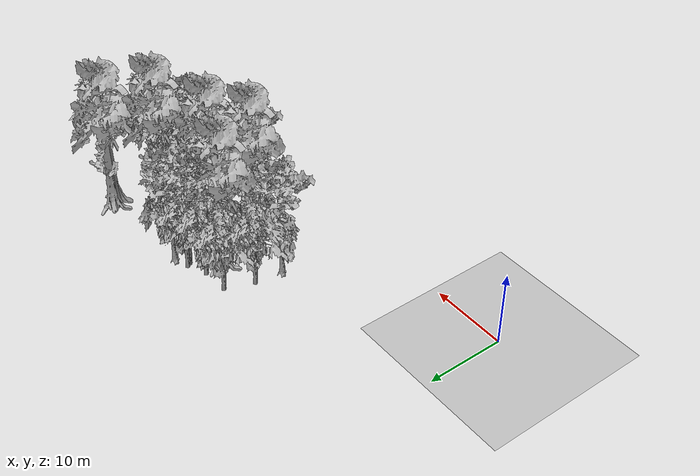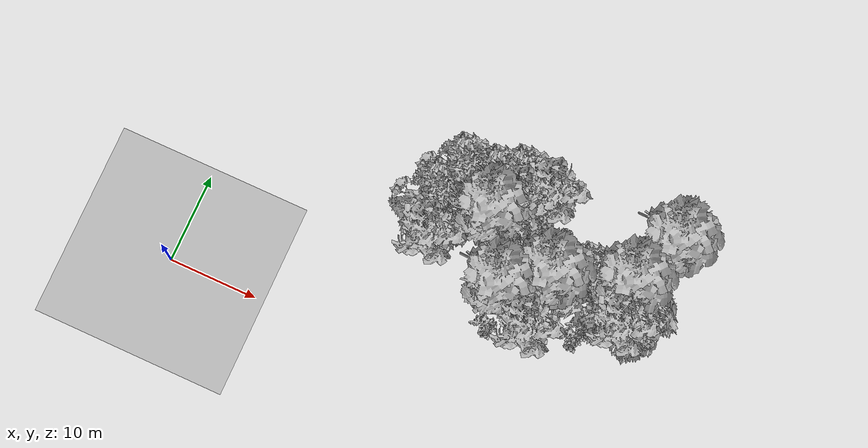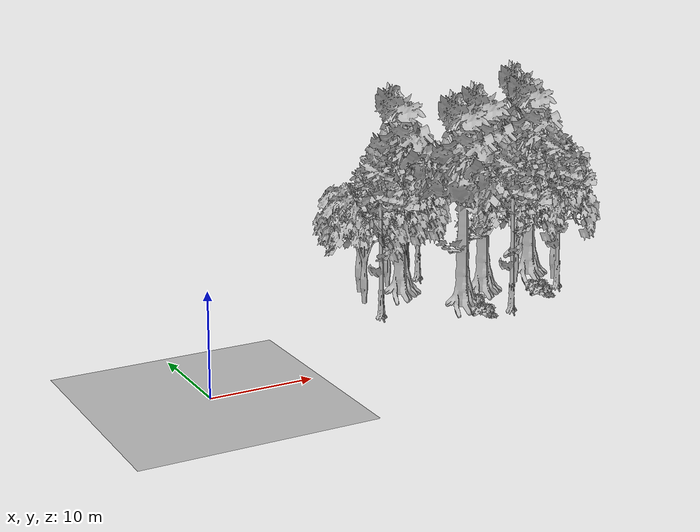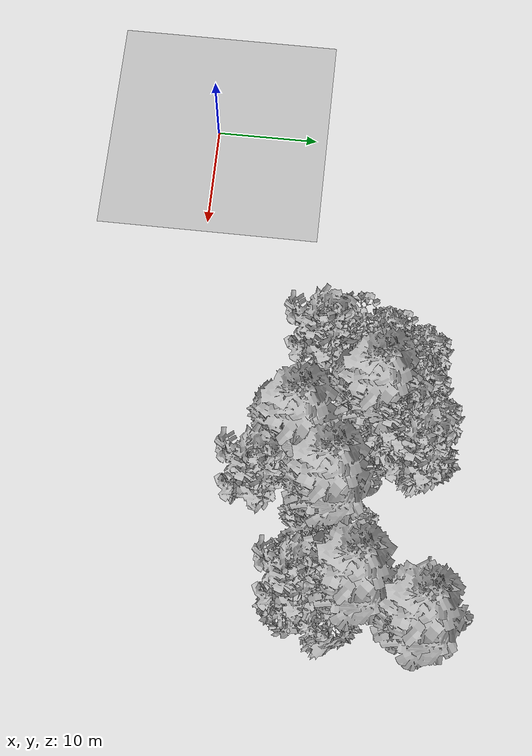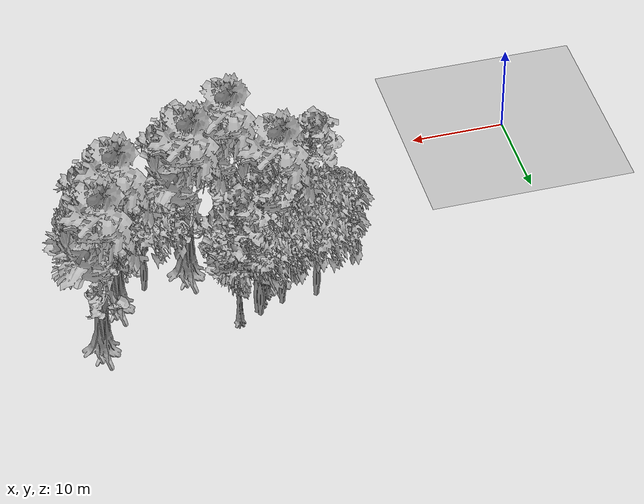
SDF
<sdf version="1.7">
 <world name="default">
  <model name="ground_plane">
   <static>1</static>
   <link name="link">
    <collision name="collision">
     <geometry><plane><normal>0 0 1</normal><size>100 100</size></plane></geometry>
     <surface><contact><ode><min_depth>0.01</min_depth><max_vel>0</max_vel></ode></contact></surface>
    </collision>
    <visual name="grass">
     <cast_shadows>0</cast_shadows>
     <geometry>
      <mesh>
       <scale>0.41000000000000003 0.41000000000000003 0.1</scale>
       <uri>file://grass_plane/meshes/grass_plane.dae</uri>
      </mesh>
     </geometry>
    </visual>
   </link>
  </model>
  <model name="Tree 22">
   <static>1</static>
   <pose>37.80199516911915 14.07022457545068 0 1.57079 -0 0</pose>
   <link name="link">
    <collision name="collision">
     <geometry><mesh><scale>5 5 5</scale><uri>model://tree_4/meshes/tree_4.obj</uri></mesh></geometry>
    </collision>
    <visual name="visual">
     <geometry><mesh><scale>5 5 5</scale><uri>model://tree_4/meshes/tree_4.obj</uri></mesh></geometry>
    </visual>
   </link>
  </model>
  <model name="Tree 40">
   <static>1</static>
   <pose>48.24264820988421 22.439823867339825 0 1.57079 -0 0</pose>
   <link name="link">
    <collision name="collision">
     <geometry><mesh><scale>5 5 5</scale><uri>model://tree_4/meshes/tree_4.obj</uri></mesh></geometry>
    </collision>
    <visual name="visual">
     <geometry><mesh><scale>5 5 5</scale><uri>model://tree_4/meshes/tree_4.obj</uri></mesh></geometry>
    </visual>
   </link>
  </model>
  <model name="Tree 55">
   <static>1</static>
   <pose>25.86277076914162 19.972662460139063 0 1.57079 -0 0</pose>
   <link name="link">
    <collision name="collision">
     <geometry><mesh><scale>5 5 5</scale><uri>model://tree_2/meshes/tree_2.obj</uri></mesh></geometry>
    </collision>
    <visual name="visual">
     <geometry><mesh><scale>5 5 5</scale><uri>model://tree_2/meshes/tree_2.obj</uri></mesh></geometry>
    </visual>
   </link>
  </model>
  <model name="Tree 77">
   <static>1</static>
   <pose>46.83927495964204 13.837637274720748 0 1.57079 -0 0</pose>
   <link name="link">
    <collision name="collision">
     <geometry><mesh><scale>5 5 5</scale><uri>model://tree_2/meshes/tree_2.obj</uri></mesh></geometry>
    </collision>
    <visual name="visual">
     <geometry><mesh><scale>5 5 5</scale><uri>model://tree_2/meshes/tree_2.obj</uri></mesh></geometry>
    </visual>
   </link>
  </model>
  <model name="Tree 103">
   <static>1</static>
   <pose>45.64608996764218 16.801472499012675 0 1.57079 -0 0</pose>
   <link name="link">
    <collision name="collision">
     <geometry><mesh><scale>5 5 5</scale><uri>model://tree_4/meshes/tree_4.obj</uri></mesh></geometry>
    </collision>
    <visual name="visual">
     <geometry><mesh><scale>5 5 5</scale><uri>model://tree_4/meshes/tree_4.obj</uri></mesh></geometry>
    </visual>
   </link>
  </model>
  <model name="Tree 174">
   <static>1</static>
   <pose>32.18628222674734 20.827485246062864 0 1.57079 -0 0</pose>
   <link name="link">
    <collision name="collision">
     <geometry><mesh><scale>5 5 5</scale><uri>model://tree_2/meshes/tree_2.obj</uri></mesh></geometry>
    </collision>
    <visual name="visual">
     <geometry><mesh><scale>5 5 5</scale><uri>model://tree_2/meshes/tree_2.obj</uri></mesh></geometry>
    </visual>
   </link>
  </model>
  <model name="Tree 209">
   <static>1</static>
   <pose>24.507348798104132 16.383957360278742 0 1.57079 -0 0</pose>
   <link name="link">
    <collision name="collision">
     <geometry><mesh><scale>5 5 5</scale><uri>model://tree_2/meshes/tree_2.obj</uri></mesh></geometry>
    </collision>
    <visual name="visual">
     <geometry><mesh><scale>5 5 5</scale><uri>model://tree_2/meshes/tree_2.obj</uri></mesh></geometry>
    </visual>
   </link>
  </model>
  <model name="Tree 229">
   <static>1</static>
   <pose>46.20866240571068 12.094915122496651 0 1.57079 -0 0</pose>
   <link name="link">
    <collision name="collision">
     <geometry><mesh><scale>5 5 5</scale><uri>model://tree_9/meshes/tree_9.obj</uri></mesh></geometry>
    </collision>
    <visual name="visual">
     <geometry><mesh><scale>5 5 5</scale><uri>model://tree_9/meshes/tree_9.obj</uri></mesh></geometry>
    </visual>
   </link>
  </model>
  <model name="Tree 239">
   <static>1</static>
   <pose>31.596997427976632 19.696301798779032 0 1.57079 -0 0</pose>
   <link name="link">
    <collision name="collision">
     <geometry><mesh><scale>5 5 5</scale><uri>model://tree_9/meshes/tree_9.obj</uri></mesh></geometry>
    </collision>
    <visual name="visual">
     <geometry><mesh><scale>5 5 5</scale><uri>model://tree_9/meshes/tree_9.obj</uri></mesh></geometry>
    </visual>
   </link>
  </model>
  <model name="Tree 258">
   <static>1</static>
   <pose>34.33078379838304 21.757873083839144 0 1.57079 -0 0</pose>
   <link name="link">
    <collision name="collision">
     <geometry><mesh><scale>5 5 5</scale><uri>model://tree_9/meshes/tree_9.obj</uri></mesh></geometry>
    </collision>
    <visual name="visual">
     <geometry><mesh><scale>5 5 5</scale><uri>model://tree_9/meshes/tree_9.obj</uri></mesh></geometry>
    </visual>
   </link>
  </model>
  <model name="Tree 298">
   <static>1</static>
   <pose>42.407879348922094 14.733070181241686 0 1.57079 -0 0</pose>
   <link name="link">
    <collision name="collision">
     <geometry><mesh><scale>5 5 5</scale><uri>model://tree_2/meshes/tree_2.obj</uri></mesh></geometry>
    </collision>
    <visual name="visual">
     <geometry><mesh><scale>5 5 5</scale><uri>model://tree_2/meshes/tree_2.obj</uri></mesh></geometry>
    </visual>
   </link>
  </model>
  <model name="Tree 345">
   <static>1</static>
   <pose>29.686381372685645 17.54589759115069 0 1.57079 -0 0</pose>
   <link name="link">
    <collision name="collision">
     <geometry><mesh><scale>5 5 5</scale><uri>model://tree_4/meshes/tree_4.obj</uri></mesh></geometry>
    </collision>
    <visual name="visual">
     <geometry><mesh><scale>5 5 5</scale><uri>model://tree_4/meshes/tree_4.obj</uri></mesh></geometry>
    </visual>
   </link>
  </model>
  <model name="Tree 389">
   <static>1</static>
   <pose>31.9354265391827 21.279044847657843 0 1.57079 -0 0</pose>
   <link name="link">
    <collision name="collision">
     <geometry><mesh><scale>5 5 5</scale><uri>model://tree_2/meshes/tree_2.obj</uri></mesh></geometry>
    </collision>
    <visual name="visual">
     <geometry><mesh><scale>5 5 5</scale><uri>model://tree_2/meshes/tree_2.obj</uri></mesh></geometry>
    </visual>
   </link>
  </model>
  <model name="Tree 415">
   <static>1</static>
   <pose>33.29643048318633 10.998768436752272 0 1.57079 -0 0</pose>
   <link name="link">
    <collision name="collision">
     <geometry><mesh><scale>5 5 5</scale><uri>model://tree_4/meshes/tree_4.obj</uri></mesh></geometry>
    </collision>
    <visual name="visual">
     <geometry><mesh><scale>5 5 5</scale><uri>model://tree_4/meshes/tree_4.obj</uri></mesh></geometry>
    </visual>
   </link>
  </model>
  <model name="Tree 437">
   <static>1</static>
   <pose>30.92968901215457 18.737203934543373 0 1.57079 -0 0</pose>
   <link name="link">
    <collision name="collision">
     <geometry><mesh><scale>5 5 5</scale><uri>model://tree_9/meshes/tree_9.obj</uri></mesh></geometry>
    </collision>
    <visual name="visual">
     <geometry><mesh><scale>5 5 5</scale><uri>model://tree_9/meshes/tree_9.obj</uri></mesh></geometry>
    </visual>
   </link>
  </model>
  <model name="Tree 488">
   <static>1</static>
   <pose>29.448029569182097 20.177417853243128 0 1.57079 -0 0</pose>
   <link name="link">
    <collision name="collision">
     <geometry><mesh><scale>5 5 5</scale><uri>model://tree_2/meshes/tree_2.obj</uri></mesh></geometry>
    </collision>
    <visual name="visual">
     <geometry><mesh><scale>5 5 5</scale><uri>model://tree_2/meshes/tree_2.obj</uri></mesh></geometry>
    </visual>
   </link>
  </model>
  <model name="Tree 495">
   <static>1</static>
   <pose>37.448659266470116 7.939548137505803 0 1.57079 -0 0</pose>
   <link name="link">
    <collision name="collision">
     <geometry><mesh><scale>5 5 5</scale><uri>model://tree_9/meshes/tree_9.obj</uri></mesh></geometry>
    </collision>
    <visual name="visual">
     <geometry><mesh><scale>5 5 5</scale><uri>model://tree_9/meshes/tree_9.obj</uri></mesh></geometry>
    </visual>
   </link>
  </model>
  <model name="Tree 496">
   <static>1</static>
   <pose>24.512082267450992 12.570819944954017 0 1.57079 -0 0</pose>
   <link name="link">
    <collision name="collision">
     <geometry><mesh><scale>5 5 5</scale><uri>model://tree_9/meshes/tree_9.obj</uri></mesh></geometry>
    </collision>
    <visual name="visual">
     <geometry><mesh><scale>5 5 5</scale><uri>model://tree_9/meshes/tree_9.obj</uri></mesh></geometry>
    </visual>
   </link>
  </model>
  <model name="Bush 8">
   <static>1</static>
   <pose>33.72983842765842 7.477026811807427 0 1.57079 -0 0</pose>
   <link name="link">
    <collision name="collision">
     <geometry><mesh><scale>2 2 2</scale><uri>model://bush_2/meshes/bush_2.obj</uri></mesh></geometry>
    </collision>
    <visual name="visual">
     <geometry><mesh><scale>5 5 5</scale><uri>model://bush_2/meshes/bush_2.obj</uri></mesh></geometry>
    </visual>
   </link>
  </model>
  <model name="Bush 62">
   <static>1</static>
   <pose>34.58594007268748 10.714886759382566 0 1.57079 -0 0</pose>
   <link name="link">
    <collision name="collision">
     <geometry><mesh><scale>2 2 2</scale><uri>model://bush_2/meshes/bush_2.obj</uri></mesh></geometry>
    </collision>
    <visual name="visual">
     <geometry><mesh><scale>5 5 5</scale><uri>model://bush_2/meshes/bush_2.obj</uri></mesh></geometry>
    </visual>
   </link>
  </model>
  <model name="Bush 77">
   <static>1</static>
   <pose>42.69533370300282 9.981853278200894 0 1.57079 -0 0</pose>
   <link name="link">
    <collision name="collision">
     <geometry><mesh><scale>2 2 2</scale><uri>model://bush_2/meshes/bush_2.obj</uri></mesh></geometry>
    </collision>
    <visual name="visual">
     <geometry><mesh><scale>5 5 5</scale><uri>model://bush_2/meshes/bush_2.obj</uri></mesh></geometry>
    </visual>
   </link>
  </model>
  <model name="Bush 123">
   <static>1</static>
   <pose>43.260293549705835 11.614565952831015 0 1.57079 -0 0</pose>
   <link name="link">
    <collision name="collision">
     <geometry><mesh><scale>2 2 2</scale><uri>model://bush_2/meshes/bush_2.obj</uri></mesh></geometry>
    </collision>
    <visual name="visual">
     <geometry><mesh><scale>5 5 5</scale><uri>model://bush_2/meshes/bush_2.obj</uri></mesh></geometry>
    </visual>
   </link>
  </model>
 </world>
</sdf>
